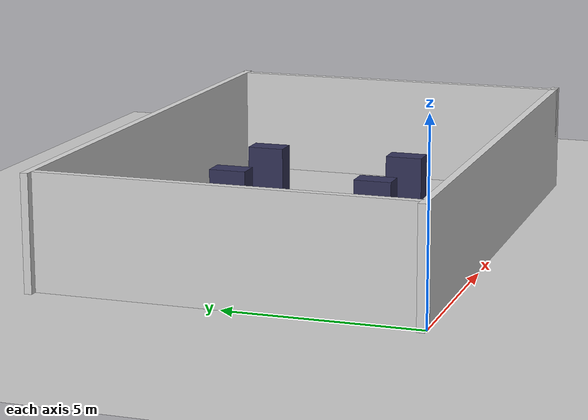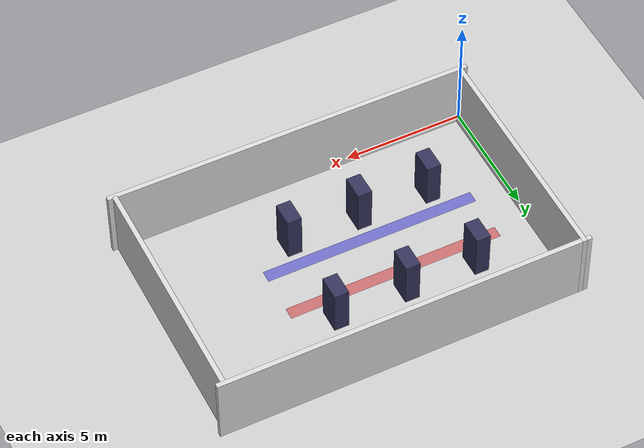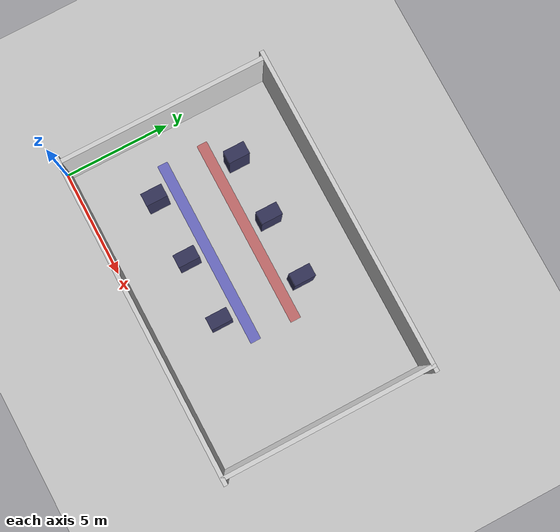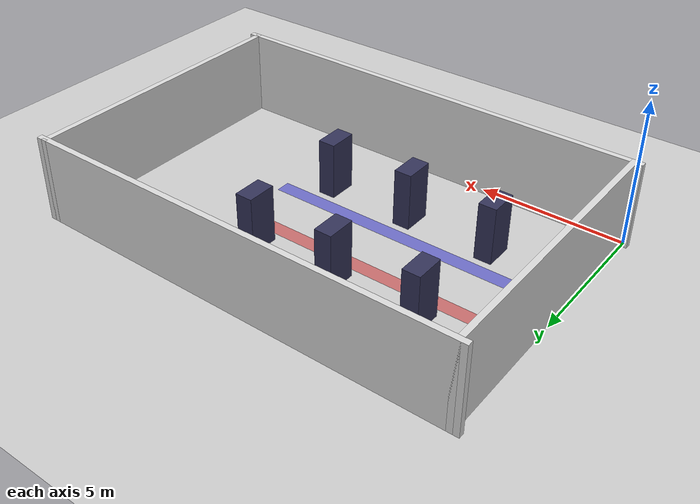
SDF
<?xml version="1.0" ?>
<!--
  DataCenter Sentinel — Gazebo Classic world
  Room: 15m x 10m
  6 server racks in 2 rows (hot aisle / cold aisle layout)
  Robot starts at (0.5, 5.0) facing east (+x)
-->
<sdf version="1.6">
  <world name="datacenter">

    <!-- ========== Physics ========== -->
    <physics name="default_physics" type="ode">
      <max_step_size>0.001</max_step_size>
      <real_time_factor>1.0</real_time_factor>
      <real_time_update_rate>1000</real_time_update_rate>
    </physics>

    <!-- ========== Lighting ========== -->
    <include>
      <uri>model://sun</uri>
    </include>

    <!-- Ambient light (datacenter-like, slightly blue-tinted) -->
    <light name="ambient_light" type="directional">
      <cast_shadows>false</cast_shadows>
      <direction>0.1 0.1 -0.9</direction>
      <diffuse>0.8 0.8 0.9 1</diffuse>
      <specular>0.2 0.2 0.2 1</specular>
    </light>

    <!-- ========== Ground plane ========== -->
    <include>
      <uri>model://ground_plane</uri>
    </include>

    <!-- ========== Room walls (15m x 10m, 0.2m thick, 3m tall) ========== -->

    <!-- South wall (y=0) -->
    <model name="wall_south">
      <static>true</static>
      <pose>7.5 0.1 1.5 0 0 0</pose>
      <link name="link">
        <collision name="collision">
          <geometry><box><size>15.4 0.2 3.0</size></box></geometry>
        </collision>
        <visual name="visual">
          <geometry><box><size>15.4 0.2 3.0</size></box></geometry>
          <material><ambient>0.85 0.85 0.85 1</ambient><diffuse>0.85 0.85 0.85 1</diffuse></material>
        </visual>
      </link>
    </model>

    <!-- North wall (y=10) -->
    <model name="wall_north">
      <static>true</static>
      <pose>7.5 9.9 1.5 0 0 0</pose>
      <link name="link">
        <collision name="collision">
          <geometry><box><size>15.4 0.2 3.0</size></box></geometry>
        </collision>
        <visual name="visual">
          <geometry><box><size>15.4 0.2 3.0</size></box></geometry>
          <material><ambient>0.85 0.85 0.85 1</ambient><diffuse>0.85 0.85 0.85 1</diffuse></material>
        </visual>
      </link>
    </model>

    <!-- West wall (x=0) -->
    <model name="wall_west">
      <static>true</static>
      <pose>0.1 5.0 1.5 0 0 0</pose>
      <link name="link">
        <collision name="collision">
          <geometry><box><size>0.2 10.0 3.0</size></box></geometry>
        </collision>
        <visual name="visual">
          <geometry><box><size>0.2 10.0 3.0</size></box></geometry>
          <material><ambient>0.85 0.85 0.85 1</ambient><diffuse>0.85 0.85 0.85 1</diffuse></material>
        </visual>
      </link>
    </model>

    <!-- East wall (x=15) -->
    <model name="wall_east">
      <static>true</static>
      <pose>14.9 5.0 1.5 0 0 0</pose>
      <link name="link">
        <collision name="collision">
          <geometry><box><size>0.2 10.0 3.0</size></box></geometry>
        </collision>
        <visual name="visual">
          <geometry><box><size>0.2 10.0 3.0</size></box></geometry>
          <material><ambient>0.85 0.85 0.85 1</ambient><diffuse>0.85 0.85 0.85 1</diffuse></material>
        </visual>
      </link>
    </model>

    <!-- ========== Server racks — ZONE A (Hot Aisle, y≈7.0) ========== -->
    <!-- Rack dimensions: 0.6m wide x 1.0m deep x 2.0m tall -->
    <!-- Color: dark blue-grey (typical rack color) -->

    <model name="rack_01">
      <static>true</static>
      <pose>3.0 7.0 1.0 0 0 0</pose>
      <link name="link">
        <collision name="collision">
          <geometry><box><size>0.6 1.0 2.0</size></box></geometry>
        </collision>
        <visual name="visual">
          <geometry><box><size>0.6 1.0 2.0</size></box></geometry>
          <material><ambient>0.15 0.15 0.25 1</ambient><diffuse>0.2 0.2 0.35 1</diffuse></material>
        </visual>
      </link>
    </model>

    <model name="rack_02">
      <static>true</static>
      <pose>6.0 7.0 1.0 0 0 0</pose>
      <link name="link">
        <collision name="collision">
          <geometry><box><size>0.6 1.0 2.0</size></box></geometry>
        </collision>
        <visual name="visual">
          <geometry><box><size>0.6 1.0 2.0</size></box></geometry>
          <material><ambient>0.15 0.15 0.25 1</ambient><diffuse>0.2 0.2 0.35 1</diffuse></material>
        </visual>
      </link>
    </model>

    <model name="rack_03">
      <static>true</static>
      <pose>9.0 7.0 1.0 0 0 0</pose>
      <link name="link">
        <collision name="collision">
          <geometry><box><size>0.6 1.0 2.0</size></box></geometry>
        </collision>
        <visual name="visual">
          <geometry><box><size>0.6 1.0 2.0</size></box></geometry>
          <material><ambient>0.15 0.15 0.25 1</ambient><diffuse>0.2 0.2 0.35 1</diffuse></material>
        </visual>
      </link>
    </model>

    <!-- ========== Server racks — ZONE B (Cold Aisle, y≈3.0) ========== -->

    <model name="rack_04">
      <static>true</static>
      <pose>3.0 3.0 1.0 0 0 0</pose>
      <link name="link">
        <collision name="collision">
          <geometry><box><size>0.6 1.0 2.0</size></box></geometry>
        </collision>
        <visual name="visual">
          <geometry><box><size>0.6 1.0 2.0</size></box></geometry>
          <material><ambient>0.15 0.15 0.25 1</ambient><diffuse>0.2 0.2 0.35 1</diffuse></material>
        </visual>
      </link>
    </model>

    <model name="rack_05">
      <static>true</static>
      <pose>6.0 3.0 1.0 0 0 0</pose>
      <link name="link">
        <collision name="collision">
          <geometry><box><size>0.6 1.0 2.0</size></box></geometry>
        </collision>
        <visual name="visual">
          <geometry><box><size>0.6 1.0 2.0</size></box></geometry>
          <material><ambient>0.15 0.15 0.25 1</ambient><diffuse>0.2 0.2 0.35 1</diffuse></material>
        </visual>
      </link>
    </model>

    <model name="rack_06">
      <static>true</static>
      <pose>9.0 3.0 1.0 0 0 0</pose>
      <link name="link">
        <collision name="collision">
          <geometry><box><size>0.6 1.0 2.0</size></box></geometry>
        </collision>
        <visual name="visual">
          <geometry><box><size>0.6 1.0 2.0</size></box></geometry>
          <material><ambient>0.15 0.15 0.25 1</ambient><diffuse>0.2 0.2 0.35 1</diffuse></material>
        </visual>
      </link>
    </model>

    <!-- ========== Aisle label markers (thin floor plates) ========== -->

    <model name="label_hot_aisle">
      <static>true</static>
      <pose>6.0 6.0 0.005 0 0 0</pose>
      <link name="link">
        <visual name="visual">
          <geometry><box><size>9.0 0.5 0.01</size></box></geometry>
          <material><ambient>0.8 0.1 0.1 0.5</ambient><diffuse>0.8 0.1 0.1 0.5</diffuse></material>
        </visual>
      </link>
    </model>

    <model name="label_cold_aisle">
      <static>true</static>
      <pose>6.0 4.0 0.005 0 0 0</pose>
      <link name="link">
        <visual name="visual">
          <geometry><box><size>9.0 0.5 0.01</size></box></geometry>
          <material><ambient>0.1 0.1 0.8 0.5</ambient><diffuse>0.1 0.1 0.8 0.5</diffuse></material>
        </visual>
      </link>
    </model>

    <!-- ========== Gazebo GUI camera position ========== -->
    <gui fullscreen="0">
      <camera name="user_camera">
        <pose>7.5 -5.0 12.0 0 0.9 1.57</pose>
        <view_controller>orbit</view_controller>
      </camera>
    </gui>

  </world>
</sdf>
